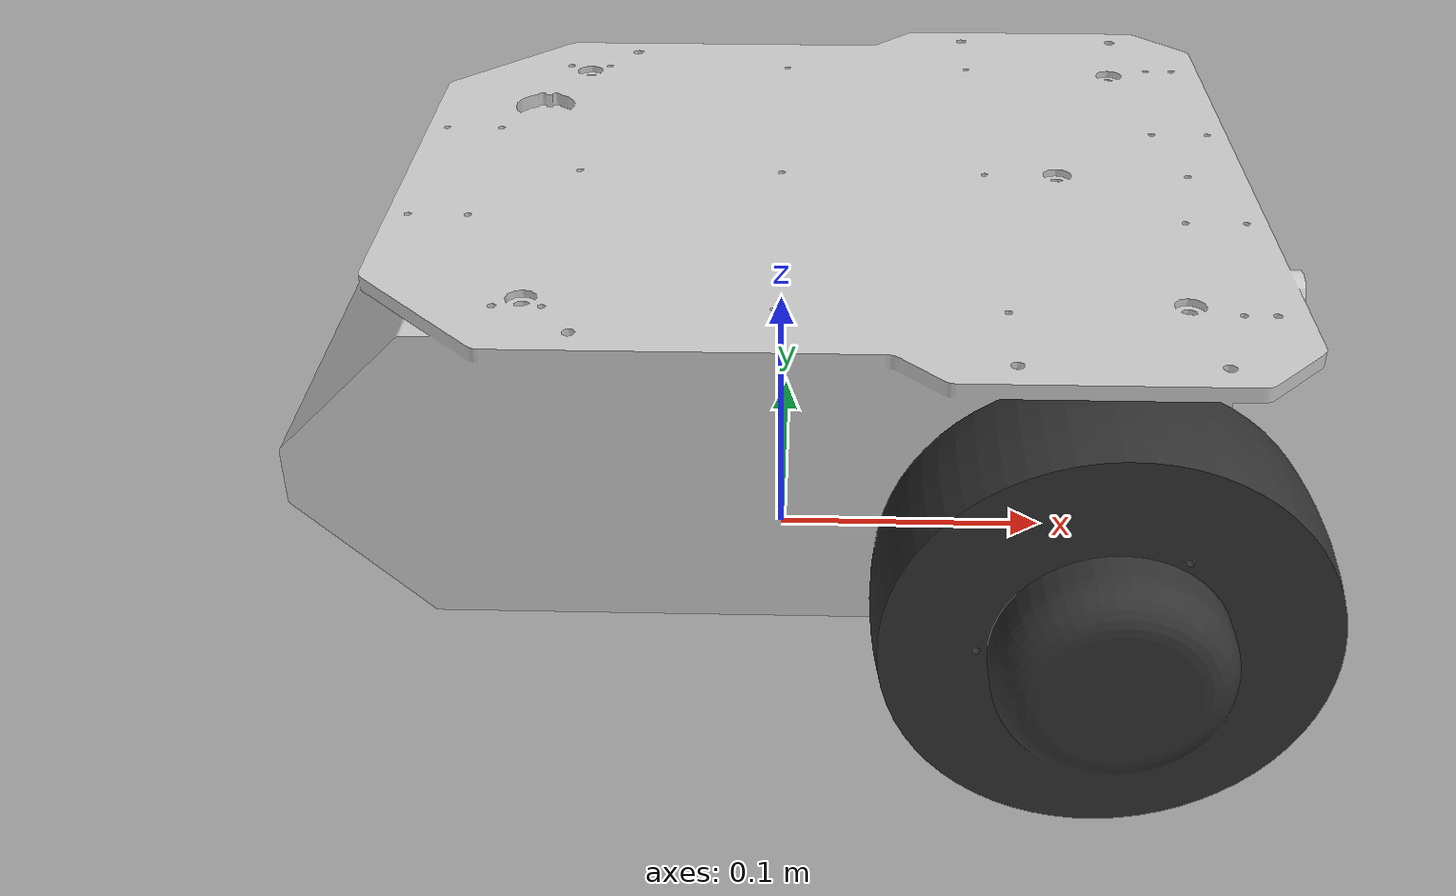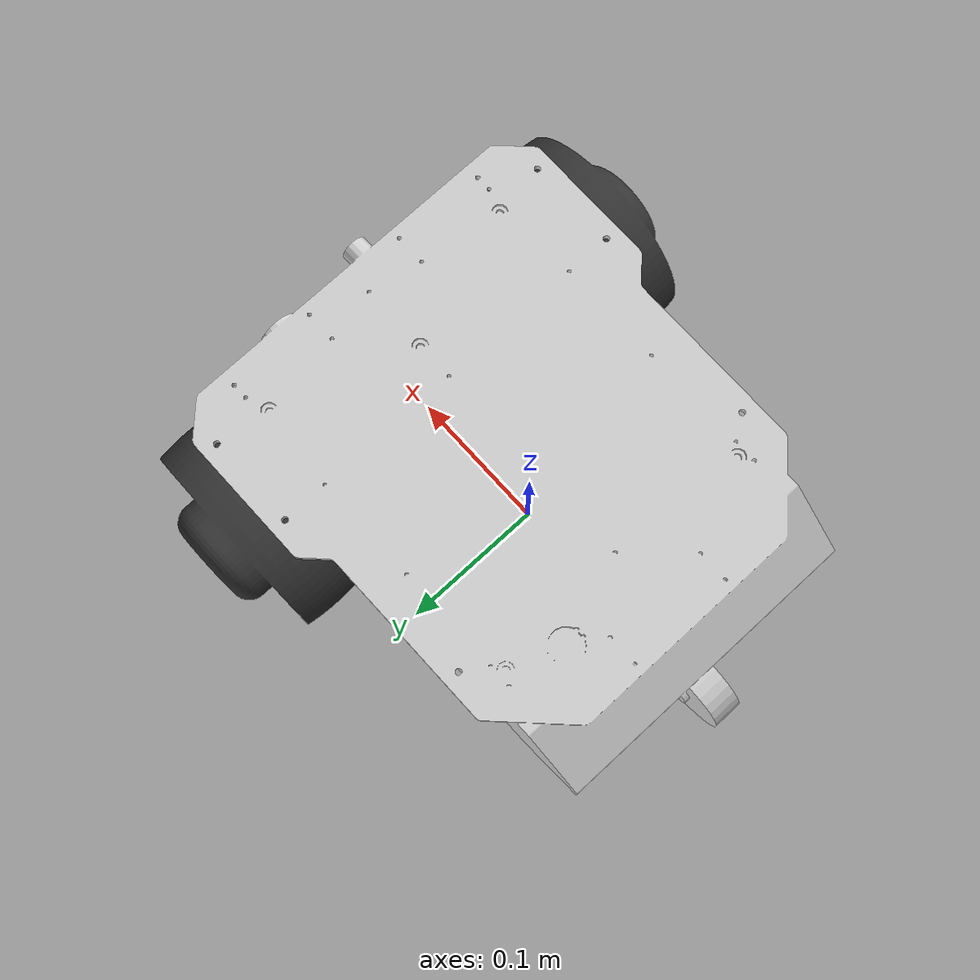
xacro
<?xml version="1.0"?>
<robot name="mega3" xmlns:xacro="http://www.ros.org/wiki/xacro">

  <xacro:include filename="$(find c_megarover_description)/urdf/materials.xacro" />

  <link name="base_footprint" />

  <joint name="base_joint" type="fixed">
    <origin xyz="0 0 0"/>
    <parent link="base_footprint"/>
    <child link="base_link"/>
  </joint>

  <link name="base_link">
    <inertial>
      <origin xyz="0 0 0" rpy="0 0 0" />
      <mass value="11.744482" />
      <inertia ixx="0.091465" iyy="0.06435" izz="0.1253"
        ixy="0.001018" iyz="-0.002369"
        ixz="0.000233" />
    </inertial>
    <visual>
      <origin xyz="0 0 0" rpy="0 0 0" />
      <geometry>
        <mesh filename="package://c_megarover_description/meshes/mega3/base_link_v5.stl" scale="0.001 0.001 0.001" />
      </geometry>
      <material name="silver" />
    </visual>
    <collision>
      <origin xyz="0 0 0" rpy="0 0 0"/>
      <geometry>
        <mesh filename="package://c_megarover_description/meshes/mega3/base_link_v5.stl" scale="0.001 0.001 0.001" />
      </geometry>
    </collision>
  </link>

  <joint name="left_wheel_joint" type="continuous">
    <origin xyz="0.1 0.136 0.07" rpy="-1.57 0 0" />
    <parent link="base_link" />
    <child link="left_wheel_1" />
    <axis xyz="0.0 0.0 1.0" />
  </joint>

  <link name="left_wheel_1">
    <inertial>
      <origin xyz="0 0 0" rpy="1.57 0 0" />
      <mass value="1.239934" />
      <inertia ixx="0.002474" iyy="0.00174" izz="0.00174"
        ixy="0.000" iyz="0.000"
        ixz="-0.000" />
    </inertial>
    <visual>
      <origin xyz="0 0 0" rpy="1.57 0 0" />
      <geometry>
        <mesh filename="package://c_megarover_description/meshes/mega3/left_wheel_1_v3.stl" scale="0.001 0.001 0.001" />
      </geometry>
      <material name="dark_grey" />
    </visual>
    <collision>
      <origin xyz="0 0 0" rpy="1.57 0 0" />
      <geometry>
        <mesh filename="package://c_megarover_description/meshes/mega3/left_wheel_1_v3.stl" scale="0.001 0.001 0.001" />
      </geometry>
    </collision>
  </link>

  <joint name="right_wheel_joint" type="continuous">
    <origin xyz="0.1 -0.136 0.07" rpy="-1.57 0 0" />
    <parent link="base_link" />
    <child link="right_wheel_1" />
    <axis xyz="0.0 0.0 1.0" />
  </joint>

  <link name="right_wheel_1">
    <inertial>
      <origin xyz="0 0 0" rpy="1.57 0 0" />
      <mass value="1.239934" />
      <inertia ixx="0.002474" iyy="0.00174" izz="0.00174"
        ixy="-0.000" iyz="-0.000"
        ixz="-0.000" />
    </inertial>
    <visual>
      <origin xyz="0 0 0" rpy="1.57 0 0" />
      <geometry>
        <mesh filename="package://c_megarover_description/meshes/mega3/right_wheel_1_v3.stl" scale="0.001 0.001 0.001" />
      </geometry>
      <material name="dark_grey" />
    </visual>
    <collision>
      <origin xyz="-0.07 -0.1 0.136" rpy="0 1.5708 0" />
      <geometry>
        <mesh filename="package://c_megarover_description/meshes/mega3/right_wheel_1_v3.stl" scale="0.001 0.001 0.001" />
      </geometry>
    </collision>
  </link>

</robot>

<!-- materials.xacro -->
<robot name="materials" xmlns:xacro="http://www.ros.org/wiki/xacro">

  <material name="silver">
    <color rgba="0.800 0.800 0.800 1.000" />
  </material>

  <material name="dark_silver">
    <color rgba="0.400 0.400 0.400 1.000" />
  </material>

  <material name="dark_grey">
    <color rgba="0.200 0.200 0.200 1.000" />
  </material>

  <material name="black">
    <color rgba="0.100 0.100 0.100 1.000" />
  </material>
</robot>
